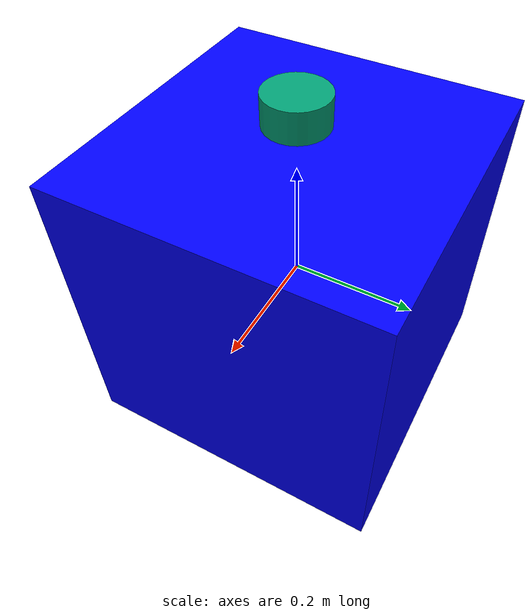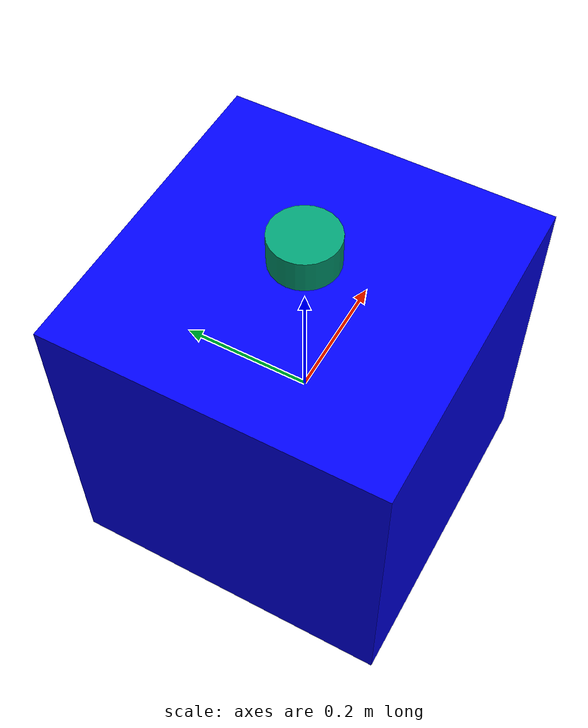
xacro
<?xml version="1.0"?>
<robot name="cube_robot" xmlns:xacro="http://www.ros.org/wiki/xacro">

  <!-- Material definitions -->
  <material name="blue">
    <color rgba="0 0 1 1"/>
  </material>

  <!-- Dummy root link (workaround for KDL inertia issue) -->
  <link name="world"/>

  <!-- Base cube -->
  <link name="base_link">
    <visual>
      <geometry>
        <box size="0.5 0.5 0.5"/>
      </geometry>
      <material name="blue"/>
    </visual>

    <collision>
      <geometry>
        <box size="0.5 0.5 0.5"/>
      </geometry>
    </collision>

    <inertial>
      <mass value="2.0"/>
      <origin xyz="0 0 0"/>
      <inertia ixx="0.1" ixy="0" ixz="0"
               iyy="0.1" iyz="0"
               izz="0.1"/>
    </inertial>
  </link>

  <!-- Joint from world to base_link -->
  <joint name="world_base_joint" type="fixed">
    <parent link="world"/>
    <child link="base_link"/>
  </joint>

  <!-- Lidar -->
  <link name="lidar_link">
    <visual>
      <geometry>
        <cylinder radius="0.05" length="0.05"/>
      </geometry>
    </visual>
  </link>

  <joint name="lidar_joint" type="fixed">
    <parent link="base_link"/>
    <child link="lidar_link"/>
    <origin xyz="0 0 0.3"/>
  </joint>

  <!-- Gazebo lidar sensor -->
  <gazebo reference="lidar_link">
    <sensor name="lidar" type="ray">
      <update_rate>10</update_rate>
      <ray>
        <scan>
          <horizontal>
            <samples>360</samples>
            <min_angle>-3.14</min_angle>
            <max_angle>3.14</max_angle>
          </horizontal>
        </scan>
        <range>
          <min>0.2</min>
          <max>10.0</max>
        </range>
      </ray>

      <plugin name="gazebo_ros_ray_sensor" filename="libgazebo_ros_ray_sensor.so">
        <ros>
          <remapping>~/out:=scan</remapping>
        </ros>
      </plugin>
    </sensor>
  </gazebo>

</robot>
